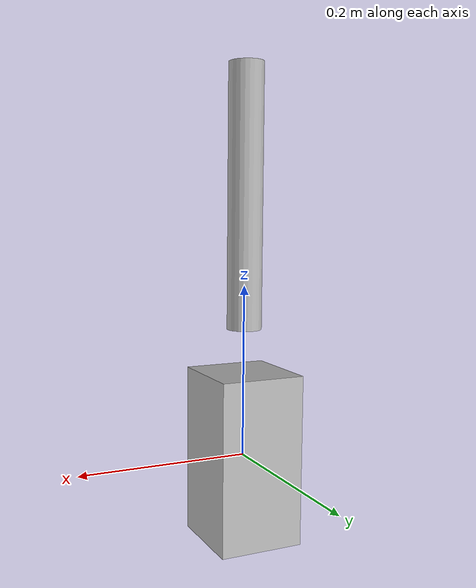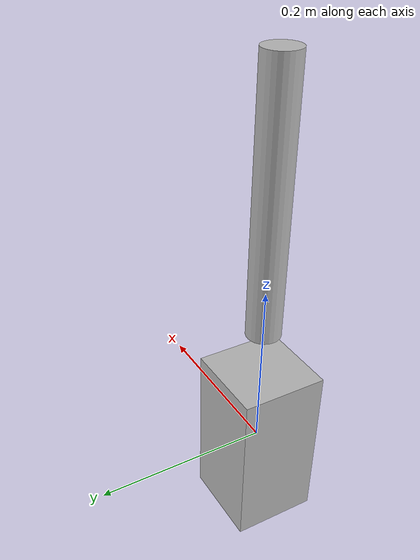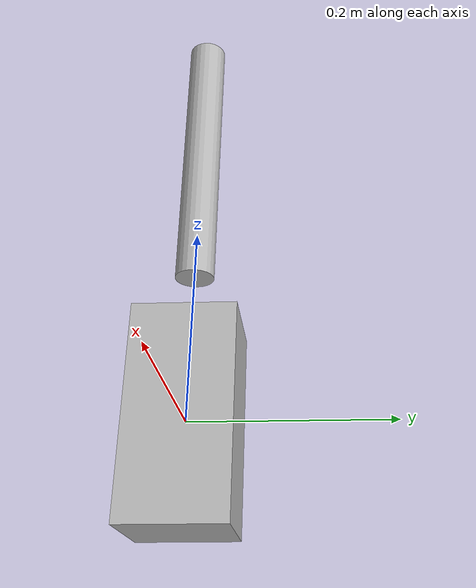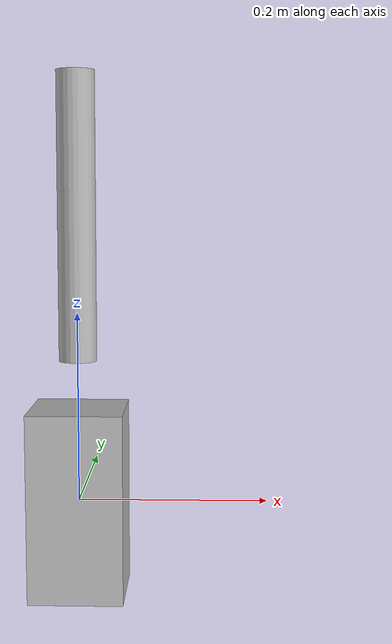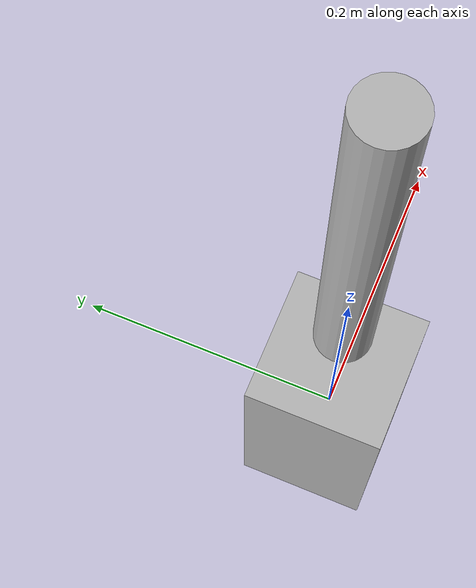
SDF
<?xml version="1.0"?>
<sdf version="1.7">
  <model name="robot_with_sensors_and_geometry">
    <link name="base_link">
      <pose>0 0 0 0 0 0</pose>
      <inertial>
        <mass>1.0</mass>
        <pose>0 0 0 0 0 0</pose>
        <inertia>
          <ixx>0.1</ixx>
          <iyy>0.1</iyy>
          <izz>0.1</izz>
          <ixy>0</ixy>
          <ixz>0</ixz>
          <iyz>0</iyz>
        </inertia>
      </inertial>

      <visual name="base_visual">
        <pose>0 0 0 0 0 0</pose>
        <geometry>
          <box>
            <size>0.1 0.1 0.2</size>
          </box>
        </geometry>
      </visual>

      <collision name="base_collision">
        <pose>0 0 0 0 0 0</pose>
        <geometry>
          <sphere>
            <radius>0.05</radius>
          </sphere>
        </geometry>
      </collision>

      <sensor name="imu_sensor" type="imu">
        <pose>0 0 0.1 0 0 0</pose>
        <imu/>
      </sensor>
    </link>

    <link name="link1">
      <pose>0 0 0.3 0 0 0</pose>
      <inertial>
        <mass>0.5</mass>
        <pose>0 0 0 0 0 0</pose>
        <inertia>
          <ixx>0.05</ixx>
          <iyy>0.05</iyy>
          <izz>0.05</izz>
          <ixy>0</ixy>
          <ixz>0</ixz>
          <iyz>0</iyz>
        </inertia>
      </inertial>

      <visual name="link1_visual">
        <pose>0 0 0 0 0 0</pose>
        <geometry>
          <cylinder>
            <radius>0.02</radius>
            <length>0.3</length>
          </cylinder>
        </geometry>
      </visual>

      <collision name="link1_collision">
        <pose>0 0 0 0 0 0</pose>
        <geometry>
          <cylinder>
            <radius>0.02</radius>
            <length>0.3</length>
          </cylinder>
        </geometry>
      </collision>
    </link>

    <joint name="joint1" type="revolute">
      <parent>base_link</parent>
      <child>link1</child>
      <pose>0 0 0 0 0 0</pose>
      <axis>
        <xyz>0 0 1</xyz>
        <limit>
          <lower>-1.57</lower>
          <upper>1.57</upper>
        </limit>
      </axis>
    </joint>
  </model>
</sdf>
